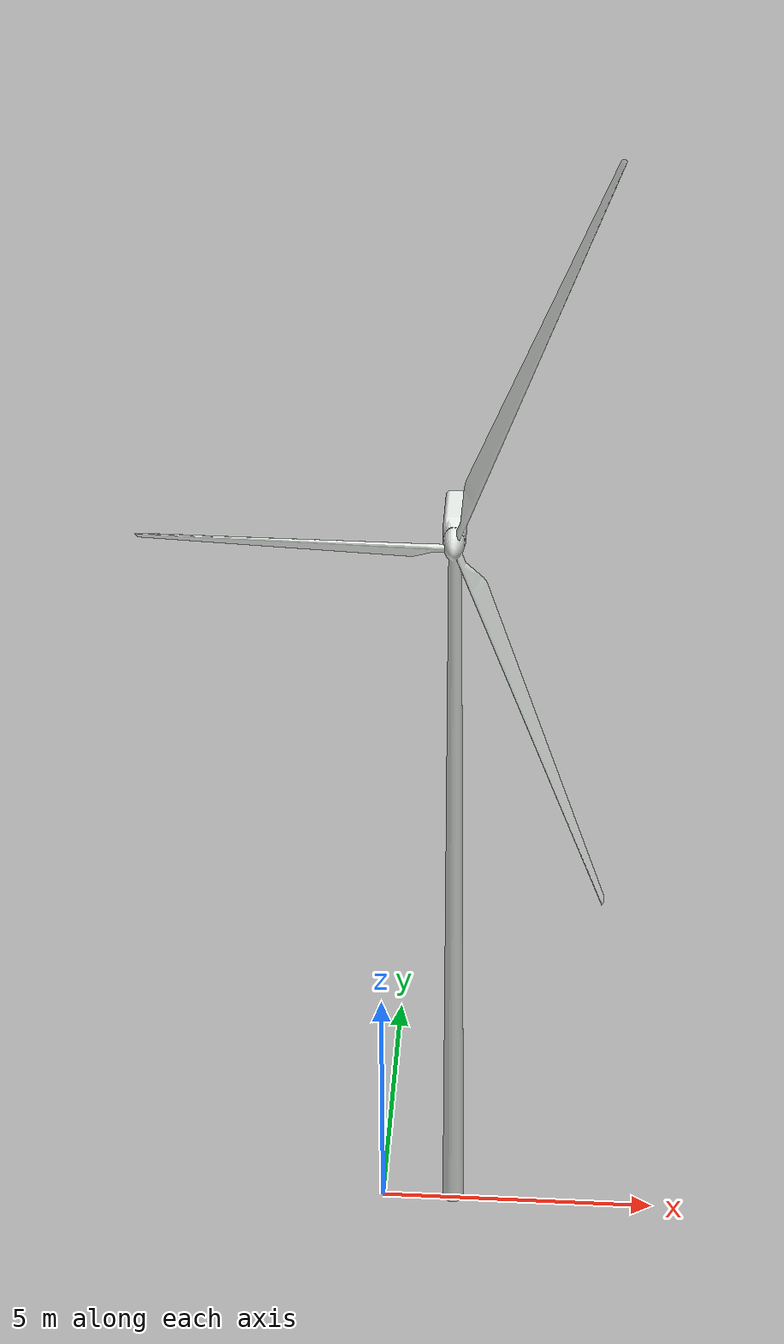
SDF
<?xml version="1.0"?>
<sdf version="1.6">
  <model name="f250_generic_wind_turbine_visual">
    <static>true</static>
    <link name="visual_link">
      <visual name="generic_wind_turbine_visual">
        <geometry>
          <mesh>
            <uri>model://f250_generic_wind_turbine_visual/meshes/generic_wind_turbine_materialized.obj</uri>
          </mesh>
        </geometry>
        <material>
          <ambient>0.88 0.9 0.88 1.0</ambient>
          <diffuse>0.88 0.9 0.88 1.0</diffuse>
          <specular>0.12 0.12 0.12 1.0</specular>
        </material>
      </visual>
    </link>
  </model>
</sdf>
